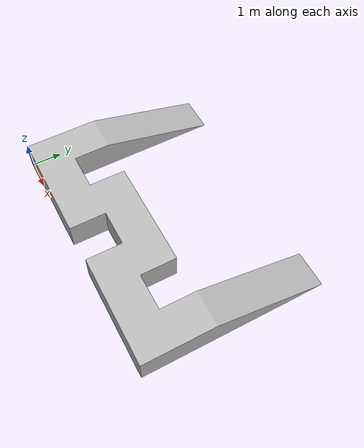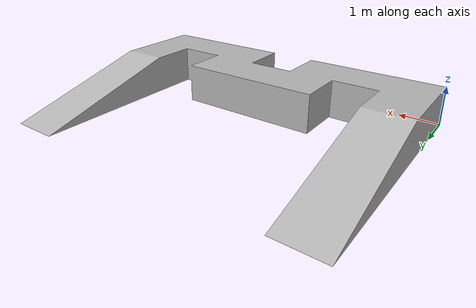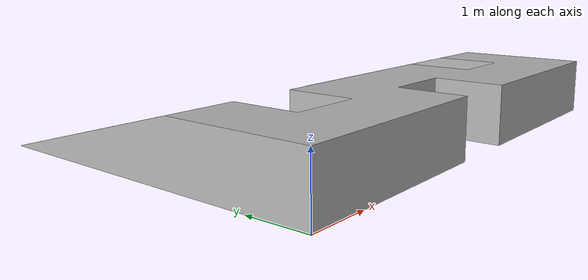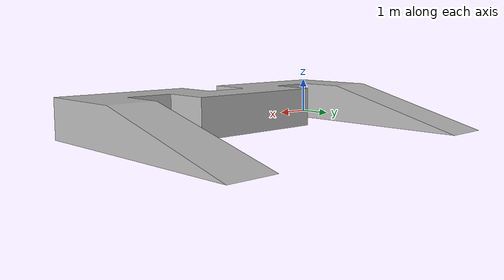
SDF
<?xml version="1.0" ?>
<sdf version="1.5">
  <model name="Negative Obstacles">
        <static>true</static>
    <link name="link">
    <gravity>0</gravity>
      <collision name="collision">
        <geometry>
          <mesh>
            <scale>1 1 1</scale>
            <uri>model://negative_obstacles/meshes/nobstacles.dae</uri>
          </mesh>
        </geometry>
      </collision>
      <visual name="visual">
        <geometry>
          <mesh>
            <scale>1 1 1</scale>
            <uri>model://negative_obstacles/meshes/nobstacles.dae</uri>
          </mesh>
        </geometry>
      </visual>
    </link>
  </model>
</sdf>
